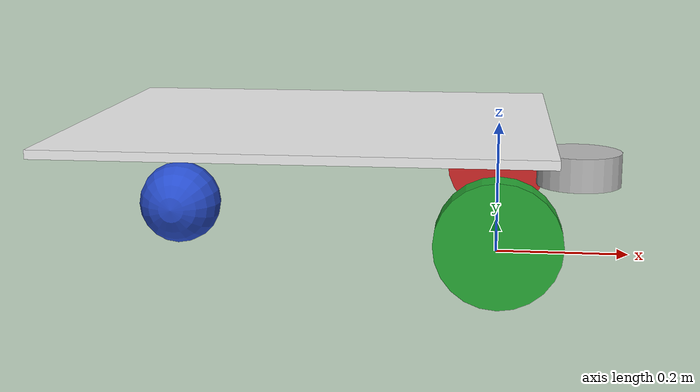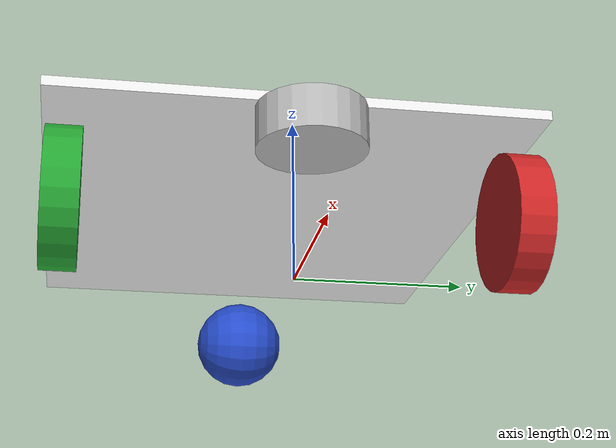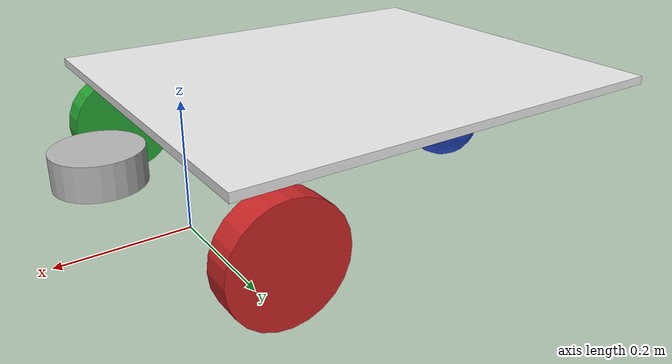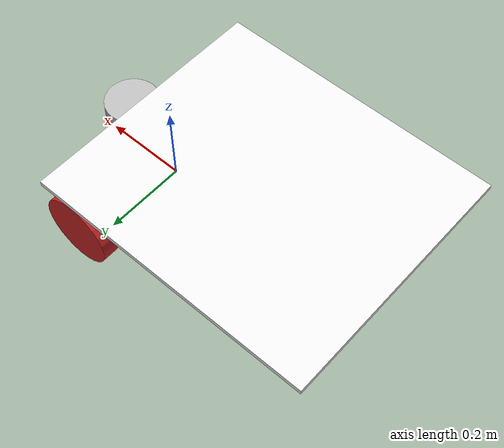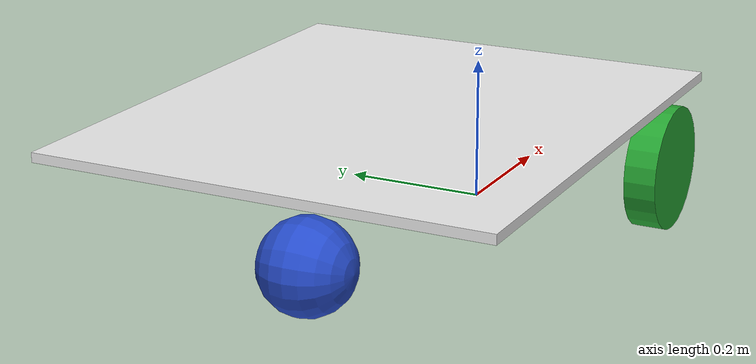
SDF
<sdf version='1.7'>
  <model name='bigbot'>
    <link name='base_link'>
      <inertial>
        <pose>-0.290984 0 0.180902 0 -0 0</pose>
        <mass>13</mass>
        <inertia>
          <ixx>0.505675</ixx>
          <ixy>-2.06795e-25</ixy>
          <ixz>-0.0254307</ixz>
          <iyy>0.424451</iyy>
          <iyz>-4.59177e-41</iyz>
          <izz>0.900058</izz>
        </inertia>
      </inertial>
      <collision name='base_link_fixed_joint_lump__chassis_link_collision'>
        <pose>-0.274 0 0.1905 0 -0 0</pose>
        <geometry>
          <box>
            <size>0.7787 0.68185 0.0913</size>
          </box>
        </geometry>
        <surface>
          <contact>
            <ode/>
          </contact>
          <friction>
            <ode/>
          </friction>
        </surface>
      </collision>
      <collision name='base_link_fixed_joint_lump__caster_link_collision_1'>
        <pose>-0.4948 0 0.065725 1.5708 -0 0</pose>
        <geometry>
          <sphere>
            <radius>0.0635</radius>
          </sphere>
        </geometry>
        <surface>
          <contact>
            <ode/>
          </contact>
          <friction>
            <ode/>
          </friction>
        </surface>
      </collision>
      <collision name='base_link_fixed_joint_lump__laser_point_collision_2'>
        <pose>0.12144 0 0.13335 0 -0 0</pose>
        <geometry>
          <cylinder>
            <length>0.0001</length>
            <radius>0.0001</radius>
          </cylinder>
        </geometry>
      </collision>
      <collision name='base_link_fixed_joint_lump__laser_frame_collision_3'>
        <pose>0.12144 0 0.13335 3.14 -0 -1.57</pose>
        <geometry>
          <cylinder>
            <length>0.0508</length>
            <radius>0.0635</radius>
          </cylinder>
        </geometry>
        <surface>
          <contact>
            <ode/>
          </contact>
          <friction>
            <ode/>
          </friction>
        </surface>
      </collision>
      <visual name='base_link_visual'>
        <pose>0 0 0 0 -0 0</pose>
        <geometry>
          <box>
            <size>0.001 0.001 0.001</size>
          </box>
        </geometry>
        <material>
          <script>
            <name>Gazebo/Red</name>
            <uri>file://media/materials/scripts/gazebo.material</uri>
          </script>
        </material>
      </visual>
      <visual name='base_link_fixed_joint_lump__chassis_link_visual_1'>
        <pose>-0.274 0 0.19685 0 -0 0</pose>
        <geometry>
          <box>
            <size>0.7001 0.60325 0.0127</size>
          </box>
        </geometry>
        <material>
          <script>
            <name>Gazebo/White</name>
            <uri>file://media/materials/scripts/gazebo.material</uri>
          </script>
        </material>
      </visual>
      <visual name='base_link_fixed_joint_lump__caster_link_visual_2'>
        <pose>-0.4948 0 0.065725 1.5708 -0 0</pose>
        <geometry>
          <sphere>
            <radius>0.0635</radius>
          </sphere>
        </geometry>
        <material>
          <script>
            <name>Gazebo/Blue</name>
            <uri>file://media/materials/scripts/gazebo.material</uri>
          </script>
        </material>
      </visual>
      <visual name='base_link_fixed_joint_lump__laser_point_visual_3'>
        <pose>0.12144 0 0.13335 0 -0 0</pose>
        <geometry>
          <cylinder>
            <length>0.0001</length>
            <radius>0.0001</radius>
          </cylinder>
        </geometry>
      </visual>
      <visual name='base_link_fixed_joint_lump__laser_frame_visual_4'>
        <pose>0.12144 0 0.13335 3.14 -0 -1.57</pose>
        <geometry>
          <cylinder>
            <length>0.0508</length>
            <radius>0.0635</radius>
          </cylinder>
        </geometry>
      </visual>
      <gravity>1</gravity>
      <sensor name='head_hokuyo_sensor' type='gpu_ray'>
        <visualize>0</visualize>
        <update_rate>7</update_rate>
        <ray>
          <scan>
            <horizontal>
              <samples>720</samples>
              <resolution>1</resolution>
              <min_angle>-1.5708</min_angle>
              <max_angle>1.5708</max_angle>
            </horizontal>
          </scan>
          <range>
            <min>0.1</min>
            <max>12</max>
            <resolution>0.01</resolution>
          </range>
          <noise>
            <type>gaussian</type>
            <mean>0</mean>
            <stddev>0.01</stddev>
          </noise>
        </ray>
        <plugin name='gazebo_ros_head_hokuyo_controller' filename='libgazebo_ros_gpu_laser.so'>
          <topicName>/scan</topicName>
          <frameName>hokuyo_link</frameName>
        </plugin>
        <pose>0.12144 0 0.13335 3.14 -0 -1.57</pose>
      </sensor>
    </link>
    <joint name='base_to_left_wheel' type='revolute'>
      <pose relative_to='base_link'>0 0.27305 0.085725 1.5707 -0 0</pose>
      <parent>base_link</parent>
      <child>left_wheel</child>
      <axis>
        <xyz>0 0 1</xyz>
        <limit>
          <lower>-1e+16</lower>
          <upper>1e+16</upper>
        </limit>
        <dynamics>
          <spring_reference>0</spring_reference>
          <spring_stiffness>0</spring_stiffness>
        </dynamics>
      </axis>
    </joint>
    <link name='left_wheel'>
      <pose relative_to='base_to_left_wheel'>0 0 0 0 -0 0</pose>
      <inertial>
        <pose>0 0 0 0 -0 0</pose>
        <mass>1</mass>
        <inertia>
          <ixx>0.00196394</ixx>
          <ixy>0</ixy>
          <ixz>0</ixz>
          <iyy>0.00196394</iyy>
          <iyz>0</iyz>
          <izz>0.0036125</izz>
        </inertia>
      </inertial>
      <collision name='left_wheel_collision'>
        <pose>0 0 0 0 -0 0</pose>
        <geometry>
          <cylinder>
            <length>0.0435</length>
            <radius>0.085</radius>
          </cylinder>
        </geometry>
        <surface>
          <contact>
            <ode/>
          </contact>
          <friction>
            <ode/>
          </friction>
        </surface>
      </collision>
      <visual name='left_wheel_visual'>
        <pose>0 0 0 0 -0 0</pose>
        <geometry>
          <cylinder>
            <length>0.0435</length>
            <radius>0.085</radius>
          </cylinder>
        </geometry>
        <material>
          <script>
            <name>Gazebo/Red</name>
            <uri>file://media/materials/scripts/gazebo.material</uri>
          </script>
        </material>
      </visual>
      <gravity>1</gravity>
    </link>
    <joint name='base_to_right_wheel' type='revolute'>
      <pose relative_to='base_link'>0 -0.27305 0.085725 1.5707 -0 0</pose>
      <parent>base_link</parent>
      <child>right_wheel</child>
      <axis>
        <xyz>0 0 1</xyz>
        <limit>
          <lower>-1e+16</lower>
          <upper>1e+16</upper>
        </limit>
        <dynamics>
          <spring_reference>0</spring_reference>
          <spring_stiffness>0</spring_stiffness>
        </dynamics>
      </axis>
    </joint>
    <link name='right_wheel'>
      <pose relative_to='base_to_right_wheel'>0 0 0 0 -0 0</pose>
      <inertial>
        <pose>0 0 0 0 -0 0</pose>
        <mass>1</mass>
        <inertia>
          <ixx>0.00196394</ixx>
          <ixy>0</ixy>
          <ixz>0</ixz>
          <iyy>0.00196394</iyy>
          <iyz>0</iyz>
          <izz>0.0036125</izz>
        </inertia>
      </inertial>
      <collision name='right_wheel_collision'>
        <pose>0 0 0 0 -0 0</pose>
        <geometry>
          <cylinder>
            <length>0.0435</length>
            <radius>0.085</radius>
          </cylinder>
        </geometry>
        <surface>
          <contact>
            <ode/>
          </contact>
          <friction>
            <ode/>
          </friction>
        </surface>
      </collision>
      <visual name='right_wheel_visual'>
        <pose>0 0 0 0 -0 0</pose>
        <geometry>
          <cylinder>
            <length>0.0435</length>
            <radius>0.085</radius>
          </cylinder>
        </geometry>
        <material>
          <script>
            <name>Gazebo/Green</name>
            <uri>file://media/materials/scripts/gazebo.material</uri>
          </script>
        </material>
      </visual>
      <gravity>1</gravity>
    </link>
    <static>0</static>
    <plugin name='differential_drive_controller' filename='libgazebo_ros_diff_drive.so'>
      <rosDebugLevel>Debug</rosDebugLevel>
      <publishWheelTF>0</publishWheelTF>
      <robotNamespace>/</robotNamespace>
      <publishTf>1</publishTf>
      <publishWheelJointState>0</publishWheelJointState>
      <alwaysOn>1</alwaysOn>
      <updateRate>100.0</updateRate>
      <leftJoint>base_to_left_wheel</leftJoint>
      <rightJoint>base_to_right_wheel</rightJoint>
      <wheelSeparation>0.5461</wheelSeparation>
      <wheelDiameter>0.17</wheelDiameter>
      <broadcastTF>1</broadcastTF>
      <wheelTorque>30</wheelTorque>
      <wheelAcceleration>1.8</wheelAcceleration>
      <commandTopic>cmd_vel</commandTopic>
      <odometryFrame>odom</odometryFrame>
      <odometryTopic>odom</odometryTopic>
      <robotBaseFrame>base_link</robotBaseFrame>
    </plugin>
  </model>
</sdf>
